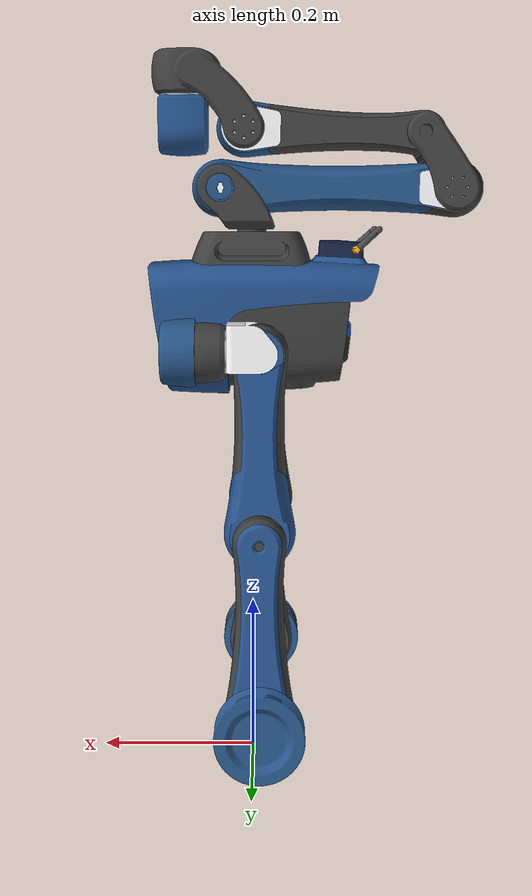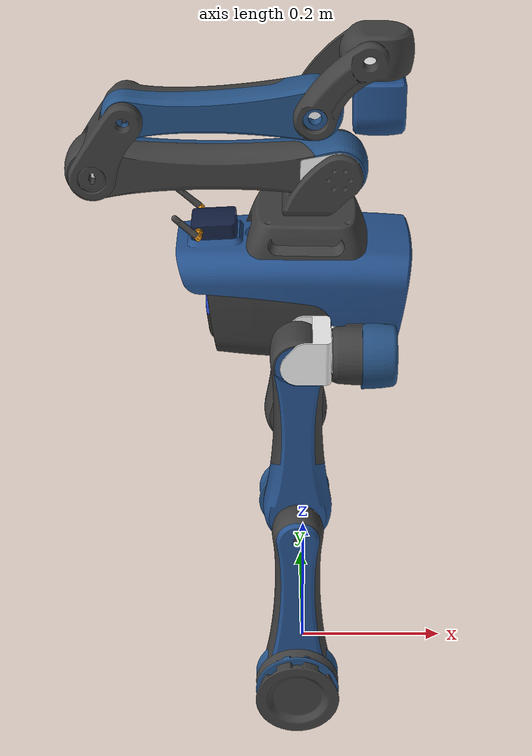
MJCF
<mujoco model="v3_arm">
  <compiler angle="radian" meshdir="meshes/"/>

  <default>
    <default class="pineapple_v3_arm">
        <geom friction="0.4" margin="0.001" condim="1"/>
        <joint damping="0.02" armature="0.004" frictionloss="0.1"/>
        <default class="hip">
            <joint axis="1 0 0" range="-0.698 0.698"/>
            <motor ctrlrange="-27.0 27.0"/>
        </default>
        <default class="thigh">
            <joint axis="0 1 0" range="-0.349 1.919"/>
            <motor ctrlrange="-27.0 27.0"/>
        </default>
        <default class="calf">
            <joint axis="0 1 0" range="-3.314 0.174" damping="0.091" armature="0.0161" frictionloss="0.2"/>
            <motor ctrlrange="-40.0 40.0"/>
        </default>
        <default class="arm_4310">
            <motor ctrlrange="-7.0 7.0"/>
        </default>
        <default class="arm_4340">
            <motor ctrlrange="-27.0 27.0"/>
        </default>
        <default class="visual">
            <geom type="mesh" contype="0" conaffinity="0" group="2"/>
        </default>
        <default class="collision">
            <geom group="3" type="mesh" rgba="1 0 0 0.3" contype="1" conaffinity="1"/>
            <default class="wheel">
              <geom size="0.077" priority="1" condim="3" friction="0.8 0.02 0.01"/>
              <joint axis="0 1 0" damping="0.0088" armature="0.00176" frictionloss="0.0841"/>
              <motor ctrlrange="-11.0 11.0"/>
            </default>
        </default>
    </default>
  </default>

  <asset>
    <material name="Opaque(255,255,255)" specular="0.5" shininess="0.5" rgba="1.000000 1.000000 1.000000 1.0"/>
    <material name="Opaque(38,83,134)" specular="0.5" shininess="0.5" rgba="0.149020 0.325490 0.525490 1.0"/>
    <material name="Opaque(20,32,65)" specular="0.5" shininess="0.5" rgba="0.078431 0.125490 0.254902 1.0"/>
    <material name="Opaque(255,166,27)" specular="0.5" shininess="0.5" rgba="1.000000 0.650980 0.105882 1.0"/>
    <material name="Opaque(75,75,75)" specular="0.5" shininess="0.5" rgba="0.294118 0.294118 0.294118 1.0"/>
    <material name="Opaque(38,83,143)" specular="0.5" shininess="0.5" rgba="0.149020 0.325490 0.560784 1.0"/>
    <material name="Opaque(247,66,66)" specular="0.5" shininess="0.5" rgba="0.968627 0.258824 0.258824 1.0"/>
    <material name="Opaque(52,52,52)" specular="0.5" shininess="0.5" rgba="0.203922 0.203922 0.203922 1.0"/>
    <material name="Opaque(229,229,229)" specular="0.5" shininess="0.5" rgba="0.898039 0.898039 0.898039 1.0"/>
    <material name="Opaque(245,245,246)" specular="0.5" shininess="0.5" rgba="0.960784 0.960784 0.964706 1.0"/>
    <material name="Opaque(255,174,33)" specular="0.5" shininess="0.5" rgba="1.000000 0.682353 0.129412 1.0"/>
    <material name="Opaque(63,63,63)" specular="0.5" shininess="0.5" rgba="0.247059 0.247059 0.247059 1.0"/>
    <material name="Opaque(44,44,39)" specular="0.5" shininess="0.5" rgba="0.172549 0.172549 0.152941 1.0"/>
    <material name="Opaque(40,79,210)" specular="0.5" shininess="0.5" rgba="0.156863 0.309804 0.823529 1.0"/>
    <mesh file="base_link_0.obj"/>
    <mesh file="base_link_1.obj"/>
    <mesh file="base_link_2.obj"/>
    <mesh file="base_link_3.obj"/>
    <mesh file="base_link_4.obj"/>
    <mesh file="base_link_5.obj"/>
    <mesh file="base_link_7.obj"/>
    <mesh file="base_link_8.obj"/>
    <mesh file="base_link_9.obj"/>
    <mesh file="base_link_10.obj"/>
    <mesh file="base_link_11.obj"/>
    <mesh file="base_link_12.obj"/>
    <mesh file="base_link_13.obj"/>
    <mesh file="fore_arm_0.obj"/>
    <mesh file="fore_arm_1.obj"/>
    <mesh file="fore_arm_2.obj"/>
    <mesh file="5dof_0.obj"/>
    <mesh file="5dof_1.obj"/>
    <mesh file="6dof_0.obj"/>
    <mesh file="6dof_1.obj"/>
    <mesh file="arm_base_0.obj"/>
    <mesh file="upper_arm_0.obj"/>
    <mesh file="upper_arm_1.obj"/>
    <mesh file="upper_arm_2.obj"/>
    <mesh file="hip_thigh_conn_0.obj"/>
    <mesh file="thigh_l_0.obj"/>
    <mesh file="thigh_l_1.obj"/>
    <mesh file="thigh_r_0.obj"/>
    <mesh file="thigh_r_1.obj"/>
    <mesh file="calf_l_0.obj"/>
    <mesh file="calf_l_1.obj"/>
    <mesh file="calf_r_0.obj"/>
    <mesh file="calf_r_1.obj"/>
    <mesh file="wheel_l_0.obj"/>
    <mesh file="wheel_l_1.obj"/>
    <mesh file="wheel_r_0.obj"/>
    <mesh file="wheel_r_1.obj"/>
  </asset>

  <worldbody>
    <body name="base_link" pos="0 0 0.5" childclass="pineapple_v3_arm">
      <freejoint/>
      <site name="imu" pos="0 0 0" />
      <inertial pos="0.00743277 -0.00031002 0.0824108" mass="4.6" fullinertia="0.03542461 0.04154315 0.04752478 -5.543E-05 0.00267146 2.215E-05" />
      <geom mesh="base_link_0" material="Opaque(40,79,210)" class="visual"/>
      <geom mesh="base_link_1" material="Opaque(44,44,39)" class="visual"/>
      <geom mesh="base_link_2" material="Opaque(63,63,63)" class="visual"/>
      <geom mesh="base_link_3" material="Opaque(255,174,33)" class="visual"/>
      <geom mesh="base_link_4" material="Opaque(245,245,246)" class="visual"/>
      <geom mesh="base_link_5" material="Opaque(229,229,229)" class="visual"/>
      <geom mesh="base_link_7" material="Opaque(247,66,66)" class="visual"/>
      <geom mesh="base_link_8" material="Opaque(38,83,143)" class="visual"/>
      <geom mesh="base_link_9" material="Opaque(75,75,75)" class="visual"/>
      <geom mesh="base_link_10" material="Opaque(255,166,27)" class="visual"/>
      <geom mesh="base_link_11" material="Opaque(20,32,65)" class="visual"/>
      <geom mesh="base_link_12" material="Opaque(38,83,134)" class="visual"/>
      <geom mesh="base_link_13" material="Opaque(255,255,255)" class="visual"/>
      <geom size="0.115 0.04 0.06" pos="-0.005 0 0.05" type="box" class='collision'/>
      <geom size="0.145 0.0725 0.02" pos="-0.015 0 0.13" type="box" class='collision'/>
      <geom size="0.065 0.065 0.02" pos="0 0 0.17" type="box" class='collision'/>
      <geom size="0.045 0.025" pos="0.0864 -0.1208 0.043" quat="0.707388 0 0.706825 0" type="cylinder" class='collision'/>
      <geom size="0.045 0.025" pos="0.0864 0.1208 0.043" quat="0.707388 0 0.706825 0" type="cylinder" class='collision'/>
      <body name="hip_thigh_conn_r" pos="0.0303 -0.1208 0.04299">
        <inertial pos="-0.015631 0.00040205 0.014026" quat="0.680466 0.680434 0.192298 -0.192348" mass="0.24" diaginertia="0.000250218 0.000219972 0.00013104"/>
        <geom material="Opaque(245,245,246)" mesh="hip_thigh_conn_0" class="visual"/>
        <joint name="hip_r_joint" pos="0 0 0" axis="1 0 0" range="-1.0472 0.6108"/>
        <body name="thigh_r" pos="-0.04 0.034 0">
          <inertial pos="-5.792e-05 -0.0353756 -0.125518" quat="0.712492 -0.00317887 0.00330608 0.701665" mass="1.52" diaginertia="0.0144268 0.0143577 0.00123335"/>
          <geom mesh="thigh_r_0" material="Opaque(63,63,63)" class="visual"/>
          <geom mesh="thigh_r_1" material="Opaque(38,83,143)" class="visual"/>
          <joint name="thigh_r_joint" pos="0 0 0" axis="0 1 0" range="0 1.74533"/>
          <geom size="0.032 0.03375 0.144" pos="0 -0.0367 -0.114" type="box" class='collision'/>
          <body name="calf_r" pos="0 -0.0741 -0.225">
            <inertial pos="-9.341e-06 -0.0234359 -0.137925" quat="0.706922 -0.00834527 0.00824528 0.707194" mass="0.91" diaginertia="0.00790149 0.0077057 0.000553215"/>
            <geom mesh="calf_r_0" material="Opaque(63,63,63)" class="visual"/>
            <geom mesh="calf_r_1" material="Opaque(38,83,143)" class="visual"/>
            <joint name="calf_r_joint" pos="0 0 0" axis="0 1 0" range="-3.229 0"/>
            <geom size="0.035 0.02225 0.1475" pos="0 -0.0223 -0.1175" type="box" class='collision'/>
            <body name="wheel_r" pos="0 -0.0563 -0.225">
              <inertial pos="0 -0.0101505 0" quat="0.707107 0 0 0.707107" mass="0.49" diaginertia="0.00199485 0.00104471 0.00104471"/>
              <geom mesh="wheel_r_0" material="Opaque(38,83,134)" class="visual"/>
              <geom mesh="wheel_r_1" material="Opaque(63,63,63)" class="visual"/>
              <joint name="wheel_r_joint" pos="0 0 0" axis="0 1 0"/>
              <geom size="0.0925 0.0175" pos="0 -0.0097 0" quat="0.707388 0.706825 0 0" type="cylinder" class='collision'/>
            </body>
          </body>
        </body>
      </body>
      <body name="hip_thigh_conn_l" pos="0.0303 0.1208 0.04299">
        <inertial pos="-0.015631 0.00040205 0.014026" quat="0.680466 0.680434 0.192298 -0.192348" mass="0.24" diaginertia="0.000250218 0.000219972 0.00013104"/>
        <geom material="Opaque(245,245,246)" mesh="hip_thigh_conn_0" class="visual"/>
        <joint name="hip_l_joint" pos="0 0 0" axis="1 0 0" range="-0.6108 1.0472"/>
        <body name="thigh_l" pos="-0.04 -0.034 0">
          <inertial pos="-5.792e-05 0.0353756 -0.125518" quat="0.701665 0.00330608 -0.00317887 0.712492" mass="1.52" diaginertia="0.0144268 0.0143577 0.00123335"/>
          <geom mesh="thigh_l_0" material="Opaque(38,83,143)" class="visual"/>
          <geom mesh="thigh_l_1" material="Opaque(63,63,63)" class="visual"/>
          <joint name="thigh_l_joint" pos="0 0 0" axis="0 1 0" range="0 1.74533"/>
          <geom size="0.032 0.03375 0.144" pos="0 0.0367 -0.114" type="box" class='collision'/>
          <body name="calf_l" pos="0 0.0741 -0.225">
            <inertial pos="-9.341e-06 0.0234359 -0.137925" quat="0.707194 0.00824528 -0.00834527 0.706922" mass="0.91" diaginertia="0.00790149 0.0077057 0.000553215"/>
            <geom mesh="calf_l_0" material="Opaque(63,63,63)" class="visual"/>
            <geom mesh="calf_l_1" material="Opaque(38,83,143)" class="visual"/>
            <joint name="calf_l_joint" pos="0 0 0" axis="0 1 0" range="-3.229 0"/>
            <geom size="0.035 0.02225 0.1475" pos="0 0.0223 -0.1175" type="box" class='collision'/>
            <body name="wheel_l" pos="0 0.0563 -0.225">
              <inertial pos="0 0.0101505 0" quat="0.707107 0 0 0.707107" mass="0.49" diaginertia="0.00199485 0.00104471 0.00104471"/>
              <geom mesh="wheel_l_0" material="Opaque(38,83,134)" class="visual"/>
              <geom mesh="wheel_l_1" material="Opaque(63,63,63)" class="visual"/>
              <joint name="wheel_l_joint" pos="0 0 0" axis="0 1 0"/>
              <geom size="0.0925 0.0175" pos="0 0.0097 0" quat="0.707388 0.706825 0 0" type="cylinder" class='collision'/>
            </body>
          </body>
        </body>
      </body>
      <body name="arm_base" pos="0.00095065 -0.00034599 0.192735">
        <inertial pos="0.0128934 -0.00240469 0.0250571" quat="0.268128 0.332439 -0.559819 0.710066" mass="0.254904" diaginertia="0.000483589 0.000358933 0.000241618"/>
        <geom mesh="arm_base_0" material="Opaque(63,63,63)" class="visual"/>
        <joint name="arm_joint" pos="0 0 0" axis="0 0 1" range="-1.5708 1.5708"/>
        <body name="upper_arm" pos="0.0392 -0.0355 0.052">
          <inertial pos="-0.150016 0.0354665 1.966e-07" quat="-0.0013465 0.707114 0.000508502 0.707098" mass="1.25745" diaginertia="0.020331 0.0202509 0.000947407"/>
          <geom mesh="upper_arm_0" material="Opaque(38,83,134)" class="visual"/>
          <geom mesh="upper_arm_1" material="Opaque(245,245,246)" class="visual"/>
          <geom mesh="upper_arm_2" material="Opaque(63,63,63)" class="visual"/>
          <joint name="arm_base_joint" pos="0 0 0" axis="0 1 0" range="0 3.1416"/>
          <geom size="0.1765 0.035 0.034" pos="-0.1427 0.03553 0" type="box" class='collision'/>
          <body name="fore_arm" pos="-0.3 0.07082 0">
            <inertial pos="0.145618 -0.0354891 0.064308" quat="0.0908869 0.658182 0.0749458 0.743586" mass="0.975742" diaginertia="0.0120217 0.0118584 0.00111232"/>
            <geom mesh="fore_arm_0" material="Opaque(63,63,63)" class="visual"/>
            <geom mesh="fore_arm_1" material="Opaque(38,83,134)" class="visual"/>
            <geom mesh="fore_arm_2" material="Opaque(245,245,246)" class="visual"/>
            <joint name="upper_arm_joint" pos="0 0 0" axis="0 1 0" range="-3.1416 0"/>
            <geom size="0.13 0.031 0.03" pos="0.1408 -0.0353 0.075" type="box" class='collision'/>
            <body name="5dof" pos="0.2698 -0.00295 0.075">
              <inertial pos="0.0565324 -0.0326958 0.0568577" quat="0.0161993 0.446378 -0.0050724 0.894684" mass="0.545046" diaginertia="0.00136273 0.00105199 0.000618399"/>
              <geom mesh="5dof_0" material="Opaque(245,245,246)" class="visual"/>
              <geom mesh="5dof_1" material="Opaque(63,63,63)" class="visual"/>
              <joint name="fore_arm_joint" pos="0 0 0" axis="0 1 0" range="-1.5708 1.7453"/>
              <geom size="0.0325 0.0325 0.03" pos="0.079 -0.0323 0.07075" type="box" class='collision'/>
              <body name="6dof" pos="0.08 -0.0328 0.04075">
                <inertial pos="-0.00187795 -1.398e-08 -0.0344311" quat="0.999167 3.7003e-06 0.0407959 -7.87422e-06" mass="0.366853" diaginertia="0.000262995 0.00025222 0.000232165"/>
                <geom mesh="6dof_0" material="Opaque(38,83,143)" class="visual"/>
                <geom mesh="6dof_1" material="Opaque(245,245,246)" class="visual"/>
                <joint name="5dof_joint" pos="0 0 0" axis="0 0 1" range="-1.5708 1.5708"/>
                <geom size="0.03 0.0325 0.036" pos="-0.002 0 -0.037" type="box" class='collision'/>
              </body>
            </body>
          </body>
        </body>
      </body>
    </body>
  </worldbody>

   <actuator>
      <motor class="hip" name="L_hip" joint="hip_l_joint" />
      <motor class="thigh" name="L_thigh" joint="thigh_l_joint" />
      <motor class="calf" name="L_calf" joint="calf_l_joint" />
      <motor class="wheel" name="L_wheel" joint="wheel_l_joint" />

      <motor class="hip" name="R_hip" joint="hip_r_joint" />
      <motor class="thigh" name="R_thigh" joint="thigh_r_joint" />
      <motor class="calf" name="R_calf" joint="calf_r_joint" />
      <motor class="wheel" name="R_wheel" joint="wheel_r_joint" />

      <motor class="arm_4340" name="1_dof" joint="arm_joint" />
      <motor class="arm_4340" name="2_dof" joint="arm_base_joint" />
      <motor class="arm_4340" name="3_dof" joint="upper_arm_joint" />
      <motor class="arm_4310" name="4_dof" joint="fore_arm_joint" />
      <motor class="arm_4310" name="5_dof" joint="5dof_joint" />

  </actuator>

</mujoco>
